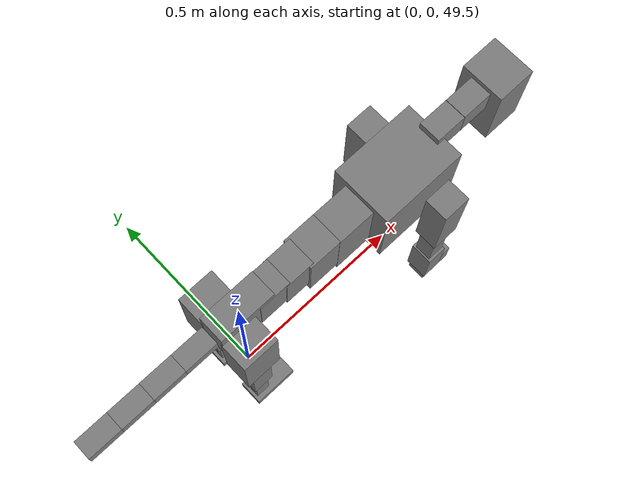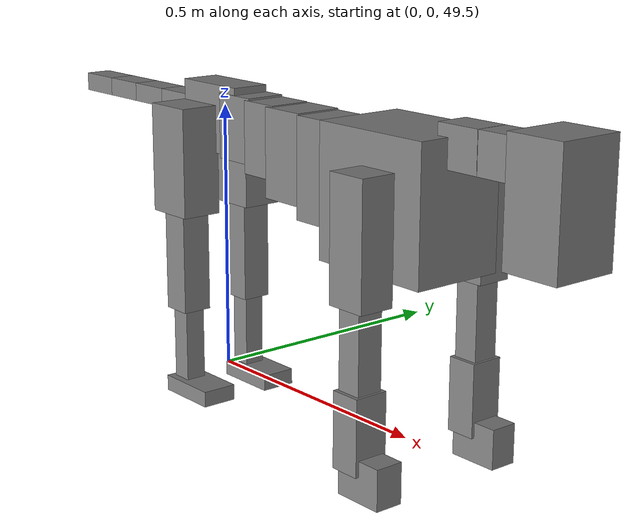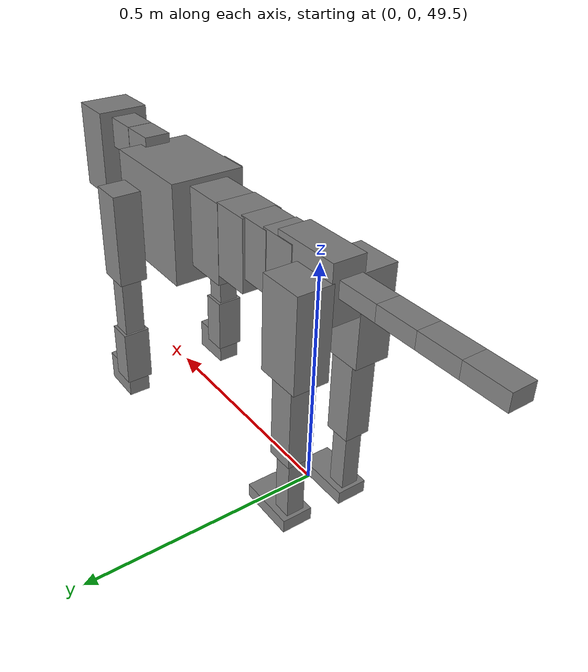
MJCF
<mujoco model="dog">

    <default>
        <joint armature="0.02" stiffness="1" damping="0.2" limited="true"/>
        <geom condim="3" friction="1 0.05 0.05" margin="0.01"/>
        <motor ctrllimited="true" ctrlrange="-1.0 1.0" forcelimited="true" gear="50"/>
    </default>

    <compiler inertiafromgeom="true" angle="radian"/>

    <option timestep="0.016" iterations="50" tolerance="1e-10" solver="Newton" jacobian="dense" cone="pyramidal"/>

    <size nconmax="20000" njmax="60000" nstack="5000000"/>
    <visual>
        <map force="0.1" zfar="30"/>
        <rgba haze="0.15 0.25 0.35 1"/>
        <quality shadowsize="2048"/>
        <global offwidth="800" offheight="800"/>
    </visual>

    <asset>
        <texture type="skybox" builtin="gradient" rgb1="0.3 0.5 0.7" rgb2="0 0 0" width="512" height="512"/>
        <texture name="texplane" type="2d" builtin="checker" rgb1=".2 .3 .4" rgb2=".1 0.15 0.2" width="512" height="512"
                 mark="cross" markrgb=".8 .8 .8"/>
        <texture name="texgeom" type="cube" builtin="flat" mark="cross" width="127" height="1278" rgb1="0.8 0.6 0.4"
                 rgb2="0.8 0.6 0.4" markrgb="1 1 1" random="0.01"/>

        <material name="matplane" reflectance="0.3" texture="texplane" texrepeat="1 1" texuniform="true"/>
        <material name="matgeom" texture="texgeom" texuniform="true" rgba="0.8 0.6 .4 1"/>
    </asset>

    <worldbody>
        <geom name="floor" pos="0 0 0" size="0 0 .25" type="plane" material="matplane" condim="3"/>

        <light directional="false" diffuse=".2 .2 .2" specular="0 0 0" pos="0 0 5" dir="0 0 -1" castshadow="false"/>
        <light mode="targetbodycom" target="torso" directional="false" diffuse=".8 .8 .8" specular="0.3 0.3 0.3"
               pos="0 0 4.0" dir="0 0 -1"/>

        <body name="root" pos="0 0 50">
            <freejoint name="root_1"/>
            <geom type="box" pos="0 0 -0.02" size="0.0774  0.0358  0.063" density="2030"/>

            <body name="spine1" pos="0.054 0 0">
                <joint name="spine1_y" axis="0 1 0" range="0 0.7" limited="true"/>
                <geom type="box" pos="0.02375 0 -0.03" size="0.04375  0.0375  0.05985" density="2030"/>

                <body name="spine2" pos="0.0612 0 0">
                    <joint name="spine2_y" axis="0 1 0" range="-0.15 0.15" limited="true"/>
                    <geom type="box" pos="0.03555  0  -0.04" size="0.04055  0.039  0.06615" density="2030"/>

                    <body name="spine3" pos="0.0730 0 0">
                        <joint name="spine3_y" axis="0 1 0" range="-0.15 0.15" limited="true"/>
                        <geom type="box" pos="0.03555  0  -0.057" size="0.04555  0.0445  0.081" density="2030"/>

                        <body name="spine4" pos="0.0780 0 0">
                            <joint name="spine4_y" axis="0 1 0" range="-0.15 0.15" limited="true"/>
                            <geom type="box" pos="0.05265  0  -0.07" size="0.05265  0.045  0.09135" density="2030"/>

                            <body name="torso" pos="0.1082 0 0">
                                <joint name="torso_y" axis="0 1 0" range="-0.15 0.15" limited="true"/>
                                <geom type="box" pos="0.11925  0  -0.085" size="0.11925  0.085  0.11745"
                                      density="2030"/>

                                <body name="neck1" pos="0.2160  0   0.0180">
                                    <joint name="neck1_y" axis="0 1 0" range="-1.2  -1" limited="true"/>
                                    <geom type="box" pos="0.0423  0  0" size="0.0423  0.03  0.036" density="2325"/>

                                    <body name="neck2" pos="0.0853  0  0">
                                        <joint name="neck2_y" axis="0 1 0" range="0.1  0" limited="true"/>
                                        <geom type="box" pos="0.0423  0  0" size="0.0423  0.03  0.036" density="2325"/>

                                        <body name="head" pos="0.0853  0  0">
                                            <joint name="head_y" axis="0 1 0" range="-0.3  -0.2" limited="true"/>
                                            <geom type="box" pos="0.0531  0  -0.055" size="0.0531  0.06  0.1044"
                                                  density="4030"/>

                                        </body>
                                    </body>
                                </body>

                                <body name="front_shoulder" pos="0.156  0   -0.0480">
                                    <joint name="front_shoulder_y" axis="0 1 0" range="-1 1.5" limited="true"/>
                                    <geom type="box" pos="0 0.13 -0.0810" size="0.0379  0.0324  0.1076" density="1158"/>
                                    <geom type="box" pos="0 -0.13 -0.0810" size="0.0379  0.0324  0.1076"
                                          density="1158"/>

                                    <body name="front_elbow" pos="0  0  -0.1620">
                                        <joint name="front_elbow_y" axis="0 1 0" range="-2 0" limited="true"/>
                                        <geom type="box" pos="0 0.13 -0.0897" size="0.0234  0.0239  0.0897"
                                              density="1081"/>
                                        <geom type="box" pos="0 -0.13 -0.0897" size="0.0234  0.0239  0.0897"
                                              density="1081"/>

                                        <body name="front_wrist" pos="0  0  -0.1794">
                                            <joint name="front_wrist_y" axis="0 1 0" range="-0.2 0" limited="true"/>
                                            <geom type="box" pos="0 0.13 -0.0534" size="0.0282  0.0313  0.0666"
                                                  density="1664"/>
                                            <geom type="box" pos="0 -0.13 -0.0534" size="0.0282  0.0313  0.0666"
                                                  density="1664"/>

                                            <body name="front_finger_end" pos="0  0  -0.1068">
                                                <joint name="front_finger_y" axis="0 1 0" range="-0.4 1"
                                                       limited="true"/>
                                                <geom type="box" pos="0.0257  0.13  -0.0211"
                                                      size="0.0471  0.0257  0.0361" density="1515"/>
                                                <geom type="box" pos="0.0257  -0.13  -0.0211"
                                                      size="0.0471  0.0257  0.0361" density="1515"/>

                                            </body>

                                        </body>
                                    </body>
                                </body>

                            </body>
                        </body>
                    </body>
                </body>
            </body>

            <body name="back_hip" pos="-0.03 0 -0.018">
                <joint name="back_hip_y" axis="0 1 0" range="-1.5 0.3" limited="true"/>
                <geom type="box" pos="0 0.07 -0.0782" size="0.0491  0.0385  0.1010" density="1154"/>
                <geom type="box" pos="0 -0.07 -0.0782" size="0.0491  0.0385  0.1010" density="1154"/>

                <body name="back_knee" pos="0  0  -0.1564">
                    <joint name="back_knee_y" axis="0 1 0" range="0 2.8" limited="true"/>
                    <geom type="box" pos="0 0.07 -0.0975" size="0.0287  0.0282  0.1131" density="1227"/>
                    <geom type="box" pos="0 -0.07 -0.0975" size="0.0287  0.0282  0.1131" density="1227"/>

                    <body name="back_ankle" pos="0  0  -0.1951">
                        <joint name="back_ankle_y" axis="0 1 0" range="-2.2 0" limited="true"/>
                        <geom type="box" pos="0 0.07 -0.0834" size="0.0196  0.0196  0.0946" density="1284"/>
                        <geom type="box" pos="0 -0.07 -0.0834" size="0.0196  0.0196  0.0946" density="1284"/>

                        <body name="back_toe_end" pos="0  0  -0.1668">
                            <joint name="back_toe_y" axis="0 1 0" range="-0.4 1" limited="true"/>
                            <geom type="box" pos="0.0336  0.07  0.0002" size="0.0617  0.0336  0.0148" density="1515"/>
                            <geom type="box" pos="0.0336  -0.07  0.0002" size="0.0617  0.0336  0.0148" density="1515"/>

                        </body>
                    </body>
                </body>
            </body>

            <body name="tail1" pos="-0.074 0 -0.006">
                <joint name="tail1_y" axis="0 1 0" range="-0.2 0.2" limited="true"/>
                <geom type="box" pos="-0.0536  0  0" size="0.045  0.025  0.0175" density="1587"/>

                <body name="tail2" pos="-0.09 0 0">
                    <joint name="tail2_y" axis="0 1 0" range="-0.2 0.2" limited="true"/>
                    <geom type="box" pos="-0.0536  0  0" size="0.045  0.025  0.0175" density="1587"/>

                    <body name="tail3" pos="-0.09 0 0">
                        <joint name="tail3_y" axis="0 1 0" range="-0.2 0.2" limited="true"/>
                        <geom type="box" pos="-0.0536  0  0" size="0.045  0.025  0.0175" density="1587"/>

                        <body name="tail4" pos="-0.09 0 0">
                            <joint name="tail4_y" axis="0 1 0" range="-0.2 0.2" limited="true"/>
                            <geom type="box" pos="-0.0536  0  0" size="0.045  0.025  0.0175" density="1587"/>

                        </body>
                    </body>
                </body>
            </body>
        </body>
    </worldbody>

    <actuator>
        <motor joint="spine1_y" forcerange="-150 150     "/>
        <motor joint="spine2_y" forcerange="-150 150     "/>
        <motor joint="spine3_y" forcerange="-150 150     "/>
        <motor joint="spine4_y" forcerange="-150 150     "/>
        <motor joint="torso_y" forcerange="-150 150     "/>
        <motor joint="neck1_y" forcerange="-100 100       "/>
        <motor joint="neck2_y" forcerange="-100 100       "/>
        <motor joint="head_y" forcerange="-150 150       "/>
        <motor joint="front_shoulder_y" forcerange="-142.01 174.05"/>
        <motor joint="front_elbow_y" forcerange="-133.93 139.71"/>
        <motor joint="front_wrist_y" forcerange="-143.57 106.68"/>
        <motor joint="front_finger_y" forcerange="-70.01 26.89"/>
        <motor joint="back_hip_y" forcerange="-358.20 354.89"/>
        <motor joint="back_knee_y" forcerange="-278.55 332.25"/>
        <motor joint="back_angle_y" forcerange="-115.18 99.05"/>
        <motor joint="back_toe_y" forcerange="-66.53 122.55"/>
        <motor joint="tail1_y" forcerange="-50 50     "/>
        <motor joint="tail2_y" forcerange="-50 50     "/>
        <motor joint="tail3_y" forcerange="-50 50     "/>
        <motor joint="tail4_y" forcerange="-50 50     "/>
    </actuator>
</mujoco>
